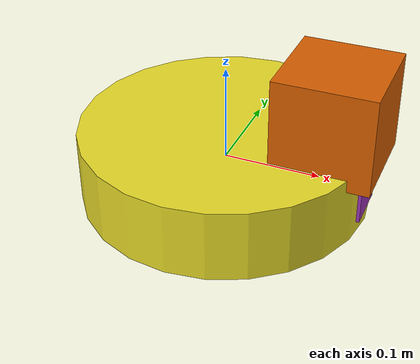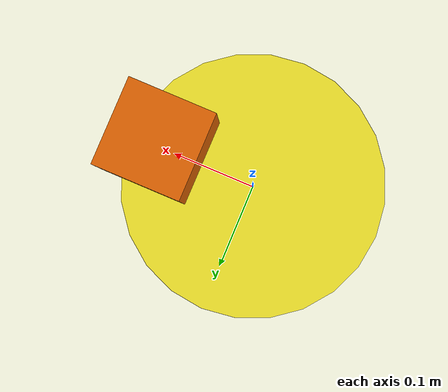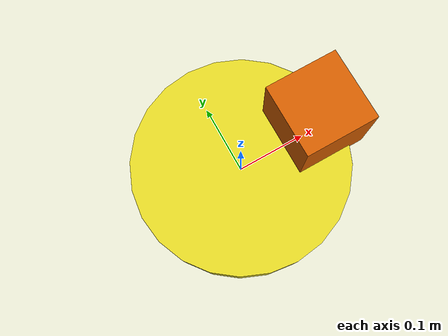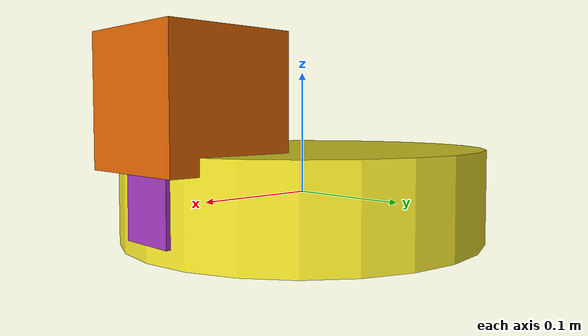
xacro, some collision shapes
<?xml version='1.0'?>

<robot name="my_robot" xmlns:xacro="http://www.ros.org/wiki/xacro">

  <xacro:include filename="$(find my_robot)/urdf/my_robot.gazebo" />

  <link name="robot_footprint"></link>

  <joint type="continuous" name="right_wheel_hinge">
    <origin xyz="0 -0.1 -0.01" rpy="0 0 0"/>
    <child link="right_wheel"/>
    <parent link="chassis"/>
    <axis xyz="0 1 0" rpy="0 0 0"/>
    <limit effort="10000" velocity="1000"/>
    <dynamics damping="1.0" friction="1.0"/>
  </joint>

  <joint type="continuous" name="left_wheel_hinge">
    <origin xyz="0 0.1 -0.01" rpy="0 0 0"/>
    <child link="left_wheel"/>
    <parent link="chassis"/>
    <axis xyz="0 1 0" rpy="0 0 0"/>
    <limit effort="10000" velocity="1000"/>
    <dynamics damping="1.0" friction="1.0"/>
  </joint>

  <joint name="robot_footprint_joint" type="fixed">
    <origin xyz="0 0 0" rpy="0 0 0" />
    <parent link="robot_footprint"/>
    <child link="chassis" />
  </joint>

  <joint name="camera_joint" type="fixed">
    <axis xyz="0 1 0" rpy="0 0 0"/>
    <origin xyz="0.125 0 0" rpy="0 0 0" />
    <parent link="chassis"/>
    <child link="camera" />
  </joint>

  <joint name="hokuyo_joint" type="fixed">
    <axis xyz="0 1 0" rpy="0 0 0"/>
    <origin xyz="0.1125 0 0.075" rpy="0 0 0" />
    <parent link="chassis"/>
    <child link="hokuyo" />
  </joint>

  <joint name="camera_optical_joint" type="fixed">
    <origin xyz="0 0 0" rpy="-1.5707 0 -1.5707"/>
    <parent link="camera"/>
    <child link="camera_link_optical"/>
  </joint>

  <link name='chassis'>
    <pose>0 0 0.035 0 0 0</pose>

    <inertial>
      <mass value="15.0"/>
      <origin xyz="0.0 0 0" rpy=" 0 0 0"/>
      <inertia
          ixx="0.1" ixy="0" ixz="0"
          iyy="0.1" iyz="0"
          izz="0.1"
      />
    </inertial>

    <collision name='chassis_collision'>
      <origin xyz="0 0 0" rpy=" 0 0 0"/>
      <geometry>
        <cylinder length="0.075" radius="0.15"/>
      </geometry>
    </collision>

    <visual name='chassis_visual'>
      <origin xyz="0 0 0" rpy=" 0 0 0"/>
      <geometry>
        <cylinder length="0.075" radius="0.15"/>
      </geometry>
    </visual>

    <collision name='back_caster_collision'>
      <origin xyz="-0.1 0 -0.01" rpy=" 0 0 0"/>
      <geometry>
        <sphere radius="0.037499"/>
      </geometry>
    </collision>

    <visual name='back_caster_visual'>
      <origin xyz="-0.1 0 -0.01" rpy=" 0 0 0"/>
      <geometry>
        <sphere radius="0.0375"/>
      </geometry>
    </visual>

    <collision name='front_caster_collision'>
      <origin xyz="0.1 0 -0.01" rpy=" 0 0 0"/>
      <geometry>
        <sphere radius="0.037499"/>
      </geometry>
    </collision>

    <visual name='front_caster_visual'>
      <origin xyz="0.1 0 -0.01" rpy=" 0 0 0"/>
      <geometry>
        <sphere radius="0.0375"/>
      </geometry>
    </visual>

  </link>

  <link name="right_wheel">

    <inertial>
      <mass value="5"/>
      <origin xyz="0 0 0" rpy=" 0 1.5707 1.5707"/>
      <inertia
          ixx="0.1" ixy="0" ixz="0"
          iyy="0.1" iyz="0"
          izz="0.1"
      />
    </inertial>

    <collision name='right_wheel_collision'>
      <origin xyz="0 0 0" rpy=" 0 1.5707 1.5707"/>
      <geometry>
        <cylinder radius="0.0375" length="0.010"/>
      </geometry>
    </collision>

    <visual name="right_wheel_visual">
      <origin xyz="0 0 0" rpy=" 0 1.5707 1.5707"/>
      <geometry>
        <cylinder radius="0.0375" length="0.010"/>
      </geometry>
    </visual>

  </link>

  <link name="left_wheel">

    <inertial>
      <mass value="5"/>
      <origin xyz="0 0 0" rpy=" 0 1.5707 1.5707"/>
      <inertia
          ixx="0.1" ixy="0" ixz="0"
          iyy="0.1" iyz="0"
          izz="0.1"
      />
    </inertial>

    <collision name='left_wheel_collision'>
      <origin xyz="0 0 0" rpy=" 0 1.5707 1.5707"/>
      <geometry>
        <cylinder radius="0.0375" length="0.010"/>
      </geometry>
    </collision>

    <visual name ="left_wheel_visual">
      <origin xyz="0 0 0" rpy=" 0 1.5707 1.5707"/>
      <geometry>
        <cylinder radius="0.0375" length="0.010"/>
      </geometry>
    </visual>

  </link>

  <link name="camera">

    <inertial>
      <mass value="0.1"/>
      <origin xyz="0 0 0" rpy="0 0 0"/>
      <inertia
         ixx="1e-6" ixy="0" ixz="0"
         iyy="1e-6" iyz="0"
         izz="1e-6"
      />
    </inertial>

    <collision name="camera_collision">
      <origin xyz="0 0 0" rpy="0 0 0"/>
      <geometry>
        <box size="0.05 0.05 0.05"/>
      </geometry>
    </collision>

    <visual name="camera_visual">
      <origin xyz="0 0 0" rpy="0 0 0"/>
      <geometry>
        <box size="0.05 0.05 0.05"/>
      </geometry>
    </visual>

    <box_inertia sizeX="0.05" sizeY="0.05" sizeZ="0.05" mass="0.1">
      <origin xyz="0 0 0" rpy="0 0 0" />
    </box_inertia>

  </link>

  <link name="hokuyo">

    <inertial>
      <mass value="1e-5"/>
      <origin xyz="0 0 0" rpy="0 0 0"/>
      <inertia
         ixx="1e-6" ixy="0" ixz="0"
         iyy="1e-6" iyz="0"
         izz="1e-6"
      />
    </inertial>

    <collision name="hokuyo_collision">
      <origin xyz="0 0 0" rpy="0 0 0"/>
      <geometry>
        <box size="0.1 0.1 0.1"/>
      </geometry>
    </collision>

    <visual name="hokuyo_visual">
      <origin xyz="0 0 0" rpy="0 0 0"/>
      <geometry>
        <mesh filename="package://my_robot/meshes/hokuyo.dae"/>
      </geometry>
    </visual>

  </link>

  <link name="camera_link_optical">
  </link>

  <gazebo reference="left_wheel">
    <material>Gazebo/Black</material>
  </gazebo>

  <gazebo reference="right_wheel">
    <material>Gazebo/Black</material>
  </gazebo>

  <gazebo reference="chassis">
    <material>Gazebo/Yellow</material>
  </gazebo>

  <gazebo reference="camera">
    <material>Gazebo/Purple</material>
  </gazebo>

</robot>
